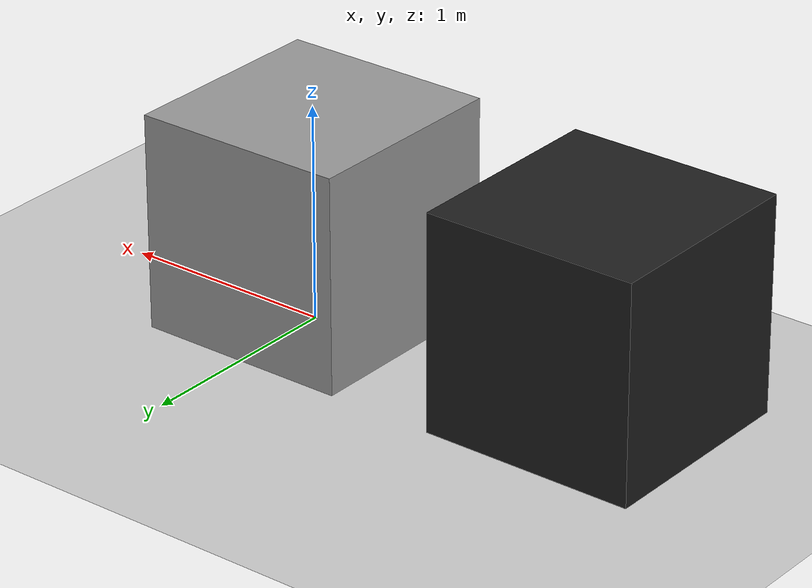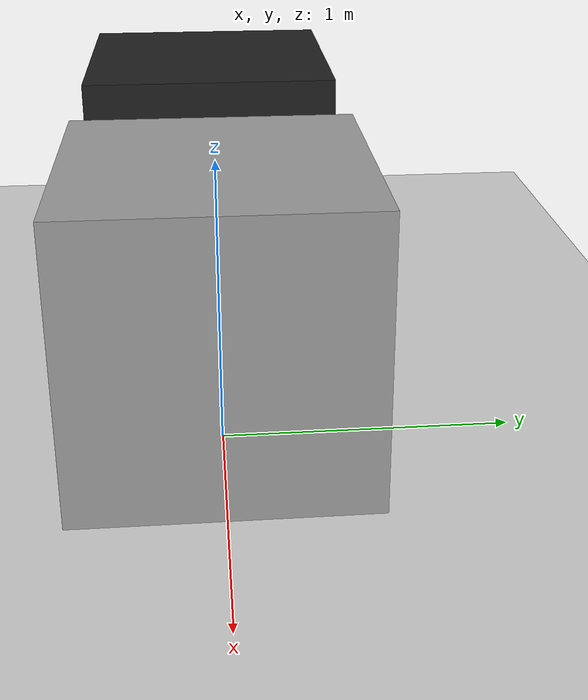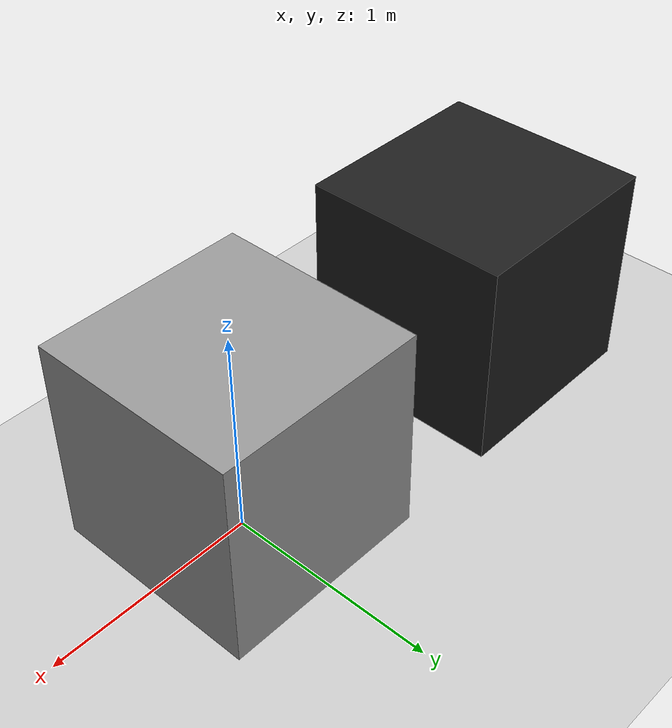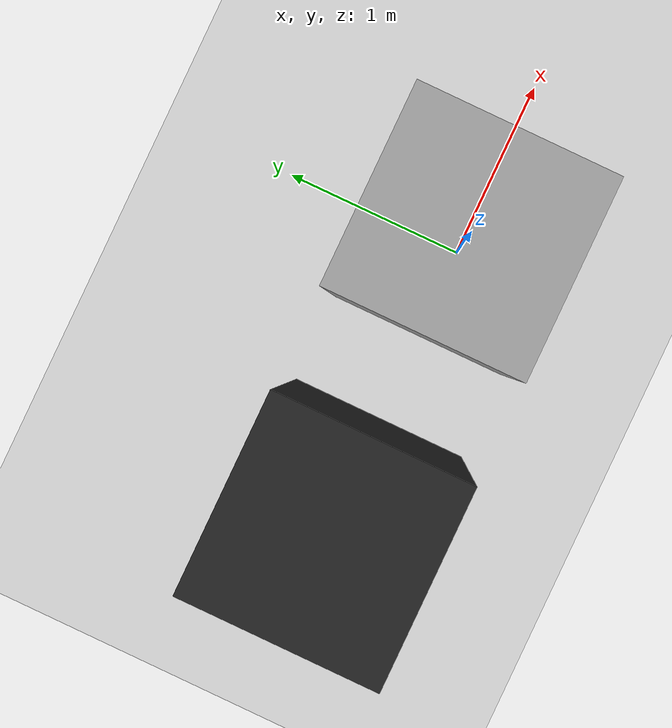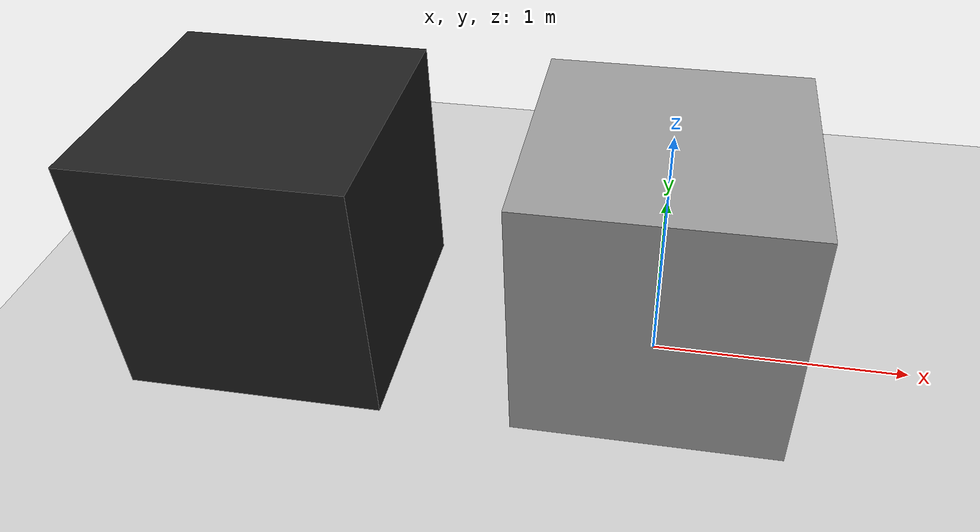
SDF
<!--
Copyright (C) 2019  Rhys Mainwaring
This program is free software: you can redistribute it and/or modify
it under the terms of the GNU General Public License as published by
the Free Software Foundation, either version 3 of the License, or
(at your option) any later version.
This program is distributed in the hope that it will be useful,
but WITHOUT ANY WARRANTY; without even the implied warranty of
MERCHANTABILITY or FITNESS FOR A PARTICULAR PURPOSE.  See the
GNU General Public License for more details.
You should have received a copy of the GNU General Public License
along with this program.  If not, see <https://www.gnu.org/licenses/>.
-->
<?xml version="1.0" ?>
<sdf version="1.6">
  <world name="teleop_twist">

    <!-- Plugins -->
    <plugin name="joy" filename="libJoySDLPlugin.so">
      <joy_id>0</joy_id>
      <output_topic>/joy</output_topic>
      <rate>50</rate>
      <dead_zone>0.1</dead_zone>
    </plugin>

    <plugin name="teleop_twist_joy" filename="libTeleopTwistJoyPlugin.so">
      <input_topic>/joy</input_topic>
      <output_topic>/cmd_vel</output_topic>
      <enable_button>10</enable_button>
      <axis_linear>3</axis_linear>
      <scale_linear>1.0</scale_linear>
      <axis_angular>0</axis_angular>
      <scale_angular>1.0</scale_angular>
    </plugin>

    <!-- Lights -->
    <include>
      <uri>model://sun</uri>
    </include>

    <!-- World models  -->
    <include>
      <uri>model://ground_plane</uri>
    </include>

    <!-- Test model  -->
    <model name="thruster_test">
      <pose>0 0 0.5 0 0 0</pose>
      <static>false</static>

      <plugin name="link_joint_controller" filename="libLinkJointControllerPlugin.so">
        <input_topic>/cmd_vel</input_topic>
        <link_name>thruster_link</link_name>
        <link_scale>2</link_scale>
        <link_type>velocity</link_type>
        <link_pid>1000 0 10</link_pid>
        <joint_name>thruster_joint</joint_name>
        <joint_scale>0.8</joint_scale>
        <joint_type>position</joint_type>
        <joint_pid>1000 0 10</joint_pid>
      </plugin>

      <link name="base_link">
        <visual name="base_visual">
          <geometry>
            <box>
              <size>1 1 1</size>
            </box>
          </geometry>
          <material>
            <script>
              <name>Gazebo/Gray</name>
            </script>
          </material>
        </visual>
        <collision name="base_collision">
          <geometry>
            <box>
              <size>1 1 1</size>
            </box>
          </geometry>
        </collision>
        <inertial>
          <pose>0 0 0 0 0 0</pose>
          <mass>10</mass>
          <inertia>
            <ixx>1.6</ixx>
            <ixy>0</ixy>
            <iyy>1.6</iyy>
            <iyz>0</iyz>
            <izz>1.6</izz>
          </inertia>
        </inertial>

      </link>

      <!-- Thruster -->
      <link name="thruster_link">
        <pose>-1.5 0 0 0 0 0</pose>
        <visual name="thruster_visual">
          <geometry>
            <box>
              <size>1 1 1</size>
            </box>
          </geometry>
          <material>
            <script>
              <name>Gazebo/Black</name>
            </script>
          </material>
        </visual>
        <collision name="thruster_collision">
          <geometry>
            <box>
              <size>1 1 1</size>
            </box>
          </geometry>
        </collision>
        <inertial>
          <pose>0 0 0 0 0 0</pose>
          <mass>1</mass>
          <inertia>
            <ixx>0.16</ixx>
            <ixy>0</ixy>
            <iyy>0.16</iyy>
            <iyz>0</iyz>
            <izz>0.16</izz>
          </inertia>
        </inertial>
      </link>

      <joint type="revolute" name="thruster_joint">
        <pose>0.75 0 0 0 0 0</pose>
        <child>thruster_link</child>
        <parent>base_link</parent>
        <axis>
          <xyz>0 0 1</xyz>
          <limit>
            <lower>-0.8</lower>
            <upper>0.8</upper>
          </limit>
        </axis>
      </joint>
    </model>

  </world>
</sdf>
